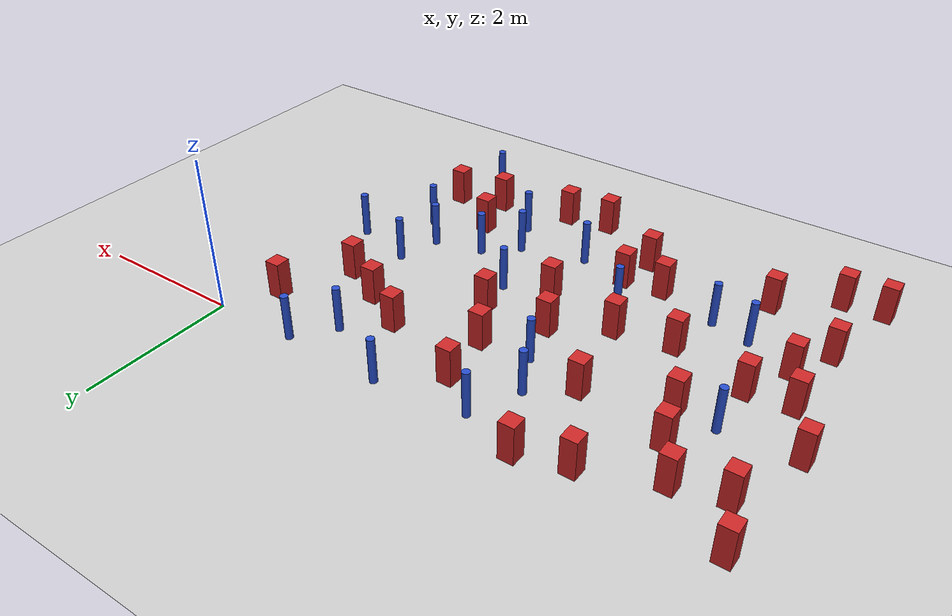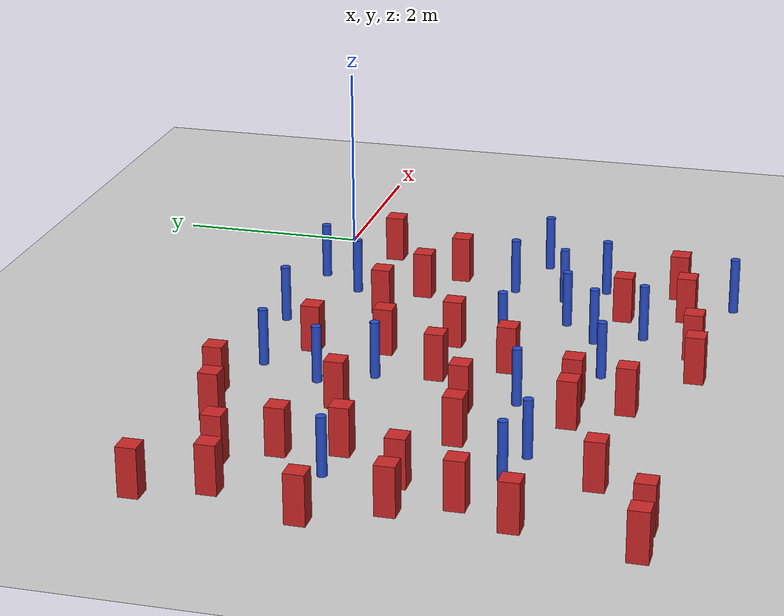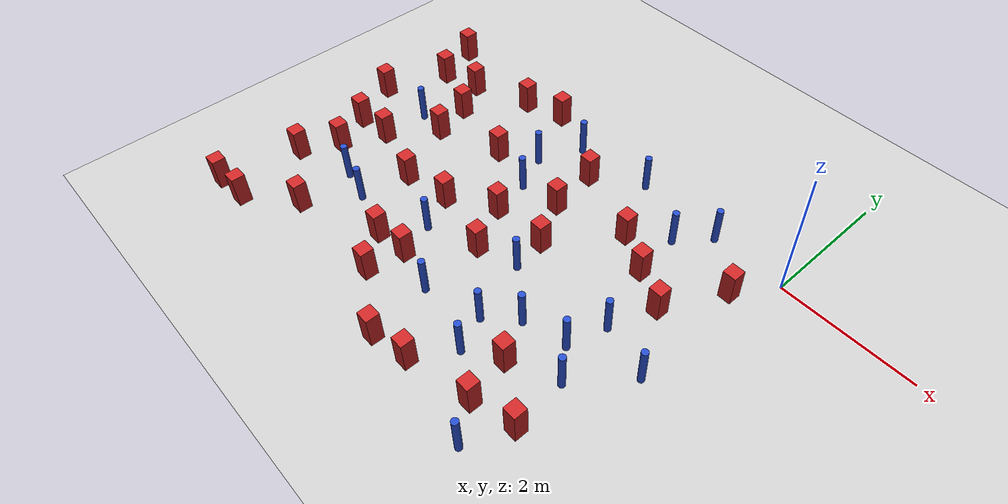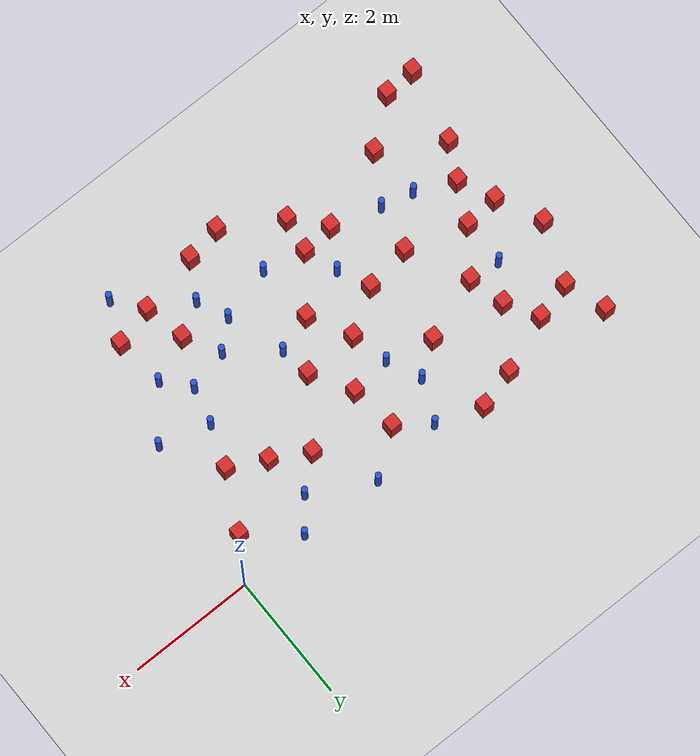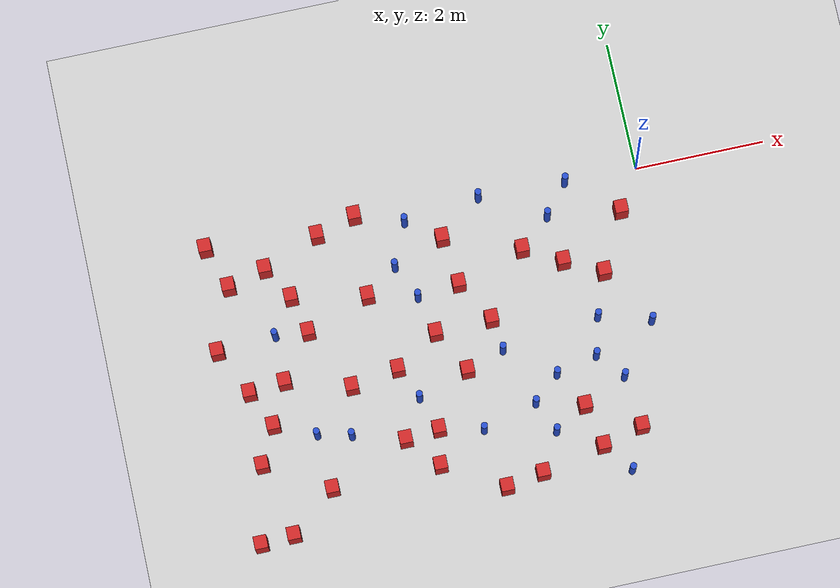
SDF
<sdf version="1.6">
 <world name="default">
  <model name="ground_plane">
   <static>1</static>
   <link name="link">
    <collision name="collision">
     <geometry><plane><normal>0 0 1</normal><size>100 100</size></plane></geometry>
     <surface><friction><ode><mu>100</mu><mu2>50</mu2></ode></friction></surface>
    </collision>
    <visual name="visual">
     <cast_shadows>0</cast_shadows>
     <geometry><plane><normal>0 0 1</normal><size>100 100</size></plane></geometry>
     <material>
      <ambient>1.0 1.0 1.0 1.0</ambient>
      <diffuse>0.8 0.8 0.8 1.0</diffuse>
      <specular>0.01 0.01 0.01 1.000000</specular>
     </material>
    </visual>
   </link>
  </model>
  <model name="square_post_obstacle0">
   <static>true</static>
   <pose>-6.48820125278 -2.20074903678 -6.11067671241e-07 -5.50515727128e-06 -8.79689657224e-07 2.37013304536e-05</pose>
   <link name="link">
    <pose>0 0 0.25 0 -0 0</pose>
    <inertial>
     <mass>100</mass>
     <inertia>
      <ixx>0.166667</ixx>
      <ixy>0</ixy>
      <ixz>0</ixz>
      <iyy>0.166667</iyy>
      <iyz>0</iyz>
      <izz>0.166667</izz>
     </inertia>
    </inertial>
    <collision name="collision"><geometry><box><size>.2 .2 .5</size></box></geometry></collision>
    <visual name="visual">
     <geometry><box><size>.2 .2 .5</size></box></geometry>
     <material>
      <script><name>Gazebo/Red</name><uri>file://media/materials/scripts/gazebo.material</uri></script>
     </material>
    </visual>
   </link>
  </model>
  <model name="square_post_obstacle13">
   <static>true</static>
   <pose>-0.3879240775 -0.623980842196 -6.11067671241e-07 -5.50515727128e-06 -8.79689657224e-07 2.37013304536e-05</pose>
   <link name="link">
    <pose>0 0 0.25 0 -0 0</pose>
    <inertial>
     <mass>100</mass>
     <inertia>
      <ixx>0.166667</ixx>
      <ixy>0</ixy>
      <ixz>0</ixz>
      <iyy>0.166667</iyy>
      <iyz>0</iyz>
      <izz>0.166667</izz>
     </inertia>
    </inertial>
    <collision name="collision"><geometry><box><size>.2 .2 .5</size></box></geometry></collision>
    <visual name="visual">
     <geometry><box><size>.2 .2 .5</size></box></geometry>
     <material>
      <script><name>Gazebo/Red</name><uri>file://media/materials/scripts/gazebo.material</uri></script>
     </material>
    </visual>
   </link>
  </model>
  <model name="square_post_obstacle21">
   <static>true</static>
   <pose>-3.89522748036 -3.89047158635 -6.11067671241e-07 -5.50515727128e-06 -8.79689657224e-07 2.37013304536e-05</pose>
   <link name="link">
    <pose>0 0 0.25 0 -0 0</pose>
    <inertial>
     <mass>100</mass>
     <inertia>
      <ixx>0.166667</ixx>
      <ixy>0</ixy>
      <ixz>0</ixz>
      <iyy>0.166667</iyy>
      <iyz>0</iyz>
      <izz>0.166667</izz>
     </inertia>
    </inertial>
    <collision name="collision"><geometry><box><size>.2 .2 .5</size></box></geometry></collision>
    <visual name="visual">
     <geometry><box><size>.2 .2 .5</size></box></geometry>
     <material>
      <script><name>Gazebo/Red</name><uri>file://media/materials/scripts/gazebo.material</uri></script>
     </material>
    </visual>
   </link>
  </model>
  <model name="pole_obstacle19">
   <static>true</static>
   <pose>-1.23644389583 -2.74520126491 -9.47619616065e-06 5.49618799737e-07 2.36310414062e-07 -1.55090534798e-07</pose>
   <link name="link">
    <pose>0 0 0.3 0 -0 0</pose>
    <inertial>
     <mass>1</mass>
     <inertia><ixx>0.145833</ixx><ixy>0</ixy><ixz>0</ixz><iyy>0.145833</iyy><iyz>0</iyz><izz>0.125</izz></inertia>
    </inertial>
    <collision name="collision">
     <geometry><cylinder><radius>0.05</radius><length>.6</length></cylinder></geometry>
    </collision>
    <visual name="visual">
     <geometry><cylinder><radius>0.05</radius><length>.6</length></cylinder></geometry>
     <material>
      <script><name>Gazebo/Blue</name><uri>file://media/materials/scripts/gazebo.material</uri></script>
     </material>
    </visual>
   </link>
  </model>
  <model name="square_post_obstacle29">
   <static>true</static>
   <pose>-6.77009937237 -4.49488068824 -6.11067671241e-07 -5.50515727128e-06 -8.79689657224e-07 2.37013304536e-05</pose>
   <link name="link">
    <pose>0 0 0.25 0 -0 0</pose>
    <inertial>
     <mass>100</mass>
     <inertia>
      <ixx>0.166667</ixx>
      <ixy>0</ixy>
      <ixz>0</ixz>
      <iyy>0.166667</iyy>
      <iyz>0</iyz>
      <izz>0.166667</izz>
     </inertia>
    </inertial>
    <collision name="collision"><geometry><box><size>.2 .2 .5</size></box></geometry></collision>
    <visual name="visual">
     <geometry><box><size>.2 .2 .5</size></box></geometry>
     <material>
      <script><name>Gazebo/Red</name><uri>file://media/materials/scripts/gazebo.material</uri></script>
     </material>
    </visual>
   </link>
  </model>
  <model name="square_post_obstacle30">
   <static>true</static>
   <pose>-2.98626958355 -4.42374359243 -6.11067671241e-07 -5.50515727128e-06 -8.79689657224e-07 2.37013304536e-05</pose>
   <link name="link">
    <pose>0 0 0.25 0 -0 0</pose>
    <inertial>
     <mass>100</mass>
     <inertia>
      <ixx>0.166667</ixx>
      <ixy>0</ixy>
      <ixz>0</ixz>
      <iyy>0.166667</iyy>
      <iyz>0</iyz>
      <izz>0.166667</izz>
     </inertia>
    </inertial>
    <collision name="collision"><geometry><box><size>.2 .2 .5</size></box></geometry></collision>
    <visual name="visual">
     <geometry><box><size>.2 .2 .5</size></box></geometry>
     <material>
      <script><name>Gazebo/Red</name><uri>file://media/materials/scripts/gazebo.material</uri></script>
     </material>
    </visual>
   </link>
  </model>
  <model name="square_post_obstacle31">
   <static>true</static>
   <pose>-6.47628070071 -0.537467946179 -6.11067671241e-07 -5.50515727128e-06 -8.79689657224e-07 2.37013304536e-05</pose>
   <link name="link">
    <pose>0 0 0.25 0 -0 0</pose>
    <inertial>
     <mass>100</mass>
     <inertia>
      <ixx>0.166667</ixx>
      <ixy>0</ixy>
      <ixz>0</ixz>
      <iyy>0.166667</iyy>
      <iyz>0</iyz>
      <izz>0.166667</izz>
     </inertia>
    </inertial>
    <collision name="collision"><geometry><box><size>.2 .2 .5</size></box></geometry></collision>
    <visual name="visual">
     <geometry><box><size>.2 .2 .5</size></box></geometry>
     <material>
      <script><name>Gazebo/Red</name><uri>file://media/materials/scripts/gazebo.material</uri></script>
     </material>
    </visual>
   </link>
  </model>
  <model name="pole_obstacle25">
   <static>true</static>
   <pose>-1.88073487549 -2.90103639177 -9.47619616065e-06 5.49618799737e-07 2.36310414062e-07 -1.55090534798e-07</pose>
   <link name="link">
    <pose>0 0 0.3 0 -0 0</pose>
    <inertial>
     <mass>1</mass>
     <inertia><ixx>0.145833</ixx><ixy>0</ixy><ixz>0</ixz><iyy>0.145833</iyy><iyz>0</iyz><izz>0.125</izz></inertia>
    </inertial>
    <collision name="collision">
     <geometry><cylinder><radius>0.05</radius><length>.6</length></cylinder></geometry>
    </collision>
    <visual name="visual">
     <geometry><cylinder><radius>0.05</radius><length>.6</length></cylinder></geometry>
     <material>
      <script><name>Gazebo/Blue</name><uri>file://media/materials/scripts/gazebo.material</uri></script>
     </material>
    </visual>
   </link>
  </model>
  <model name="pole_obstacle27">
   <static>true</static>
   <pose>-0.888759996802 -3.14930213834 -9.47619616065e-06 5.49618799737e-07 2.36310414066e-07 -1.55090534797e-07</pose>
   <link name="link">
    <pose>0 0 0.3 0 -0 0</pose>
    <inertial>
     <mass>1</mass>
     <inertia><ixx>0.145833</ixx><ixy>0</ixy><ixz>0</ixz><iyy>0.145833</iyy><iyz>0</iyz><izz>0.125</izz></inertia>
    </inertial>
    <collision name="collision">
     <geometry><cylinder><radius>0.05</radius><length>.6</length></cylinder></geometry>
    </collision>
    <visual name="visual">
     <geometry><cylinder><radius>0.05</radius><length>.6</length></cylinder></geometry>
     <material>
      <script><name>Gazebo/Blue</name><uri>file://media/materials/scripts/gazebo.material</uri></script>
     </material>
    </visual>
   </link>
  </model>
  <model name="pole_obstacle35">
   <static>true</static>
   <pose>-5.61649100675 -3.04436326011 -9.47619616065e-06 5.49618799738e-07 2.36310414051e-07 -1.55090534805e-07</pose>
   <link name="link">
    <pose>0 0 0.3 0 -0 0</pose>
    <inertial>
     <mass>1</mass>
     <inertia><ixx>0.145833</ixx><ixy>0</ixy><ixz>0</ixz><iyy>0.145833</iyy><iyz>0</iyz><izz>0.125</izz></inertia>
    </inertial>
    <collision name="collision">
     <geometry><cylinder><radius>0.05</radius><length>.6</length></cylinder></geometry>
    </collision>
    <visual name="visual">
     <geometry><cylinder><radius>0.05</radius><length>.6</length></cylinder></geometry>
     <material>
      <script><name>Gazebo/Blue</name><uri>file://media/materials/scripts/gazebo.material</uri></script>
     </material>
    </visual>
   </link>
  </model>
  <model name="square_post_obstacle36">
   <static>true</static>
   <pose>-3.19417511307 -2.55411420515 -6.11067671241e-07 -5.50515727128e-06 -8.79689657224e-07 2.37013304536e-05</pose>
   <link name="link">
    <pose>0 0 0.25 0 -0 0</pose>
    <inertial>
     <mass>100</mass>
     <inertia>
      <ixx>0.166667</ixx>
      <ixy>0</ixy>
      <ixz>0</ixz>
      <iyy>0.166667</iyy>
      <iyz>0</iyz>
      <izz>0.166667</izz>
     </inertia>
    </inertial>
    <collision name="collision"><geometry><box><size>.2 .2 .5</size></box></geometry></collision>
    <visual name="visual">
     <geometry><box><size>.2 .2 .5</size></box></geometry>
     <material>
      <script><name>Gazebo/Red</name><uri>file://media/materials/scripts/gazebo.material</uri></script>
     </material>
    </visual>
   </link>
  </model>
  <model name="square_post_obstacle37">
   <static>true</static>
   <pose>-1.41751599388 -1.21802448325 -6.11067671241e-07 -5.50515727128e-06 -8.79689657224e-07 2.37013304536e-05</pose>
   <link name="link">
    <pose>0 0 0.25 0 -0 0</pose>
    <inertial>
     <mass>100</mass>
     <inertia>
      <ixx>0.166667</ixx>
      <ixy>0</ixy>
      <ixz>0</ixz>
      <iyy>0.166667</iyy>
      <iyz>0</iyz>
      <izz>0.166667</izz>
     </inertia>
    </inertial>
    <collision name="collision"><geometry><box><size>.2 .2 .5</size></box></geometry></collision>
    <visual name="visual">
     <geometry><box><size>.2 .2 .5</size></box></geometry>
     <material>
      <script><name>Gazebo/Red</name><uri>file://media/materials/scripts/gazebo.material</uri></script>
     </material>
    </visual>
   </link>
  </model>
  <model name="pole_obstacle38">
   <static>true</static>
   <pose>-3.13582424816 -3.4988041668 -9.47619616065e-06 5.49618799737e-07 2.36310414051e-07 -1.55090534807e-07</pose>
   <link name="link">
    <pose>0 0 0.3 0 -0 0</pose>
    <inertial>
     <mass>1</mass>
     <inertia><ixx>0.145833</ixx><ixy>0</ixy><ixz>0</ixz><iyy>0.145833</iyy><iyz>0</iyz><izz>0.125</izz></inertia>
    </inertial>
    <collision name="collision">
     <geometry><cylinder><radius>0.05</radius><length>.6</length></cylinder></geometry>
    </collision>
    <visual name="visual">
     <geometry><cylinder><radius>0.05</radius><length>.6</length></cylinder></geometry>
     <material>
      <script><name>Gazebo/Blue</name><uri>file://media/materials/scripts/gazebo.material</uri></script>
     </material>
    </visual>
   </link>
  </model>
  <model name="pole_obstacle41">
   <static>true</static>
   <pose>-2.07291992488 -3.75096266474 -9.47619616065e-06 5.49618799737e-07 2.36310414051e-07 -1.55090534807e-07</pose>
   <link name="link">
    <pose>0 0 0.3 0 -0 0</pose>
    <inertial>
     <mass>1</mass>
     <inertia><ixx>0.145833</ixx><ixy>0</ixy><ixz>0</ixz><iyy>0.145833</iyy><iyz>0</iyz><izz>0.125</izz></inertia>
    </inertial>
    <collision name="collision">
     <geometry><cylinder><radius>0.05</radius><length>.6</length></cylinder></geometry>
    </collision>
    <visual name="visual">
     <geometry><cylinder><radius>0.05</radius><length>.6</length></cylinder></geometry>
     <material>
      <script><name>Gazebo/Blue</name><uri>file://media/materials/scripts/gazebo.material</uri></script>
     </material>
    </visual>
   </link>
  </model>
  <model name="square_post_obstacle50">
   <static>true</static>
   <pose>-2.67295161383 -1.8649905392 -6.11067671241e-07 -5.50515727128e-06 -8.79689657224e-07 2.37013304536e-05</pose>
   <link name="link">
    <pose>0 0 0.25 0 -0 0</pose>
    <inertial>
     <mass>100</mass>
     <inertia>
      <ixx>0.166667</ixx>
      <ixy>0</ixy>
      <ixz>0</ixz>
      <iyy>0.166667</iyy>
      <iyz>0</iyz>
      <izz>0.166667</izz>
     </inertia>
    </inertial>
    <collision name="collision"><geometry><box><size>.2 .2 .5</size></box></geometry></collision>
    <visual name="visual">
     <geometry><box><size>.2 .2 .5</size></box></geometry>
     <material>
      <script><name>Gazebo/Red</name><uri>file://media/materials/scripts/gazebo.material</uri></script>
     </material>
    </visual>
   </link>
  </model>
  <model name="square_post_obstacle56">
   <static>true</static>
   <pose>-4.95606259894 -2.43331023329 -6.11067671241e-07 -5.50515727128e-06 -8.79689657224e-07 2.37013304536e-05</pose>
   <link name="link">
    <pose>0 0 0.25 0 -0 0</pose>
    <inertial>
     <mass>100</mass>
     <inertia>
      <ixx>0.166667</ixx>
      <ixy>0</ixy>
      <ixz>0</ixz>
      <iyy>0.166667</iyy>
      <iyz>0</iyz>
      <izz>0.166667</izz>
     </inertia>
    </inertial>
    <collision name="collision"><geometry><box><size>.2 .2 .5</size></box></geometry></collision>
    <visual name="visual">
     <geometry><box><size>.2 .2 .5</size></box></geometry>
     <material>
      <script><name>Gazebo/Red</name><uri>file://media/materials/scripts/gazebo.material</uri></script>
     </material>
    </visual>
   </link>
  </model>
  <model name="pole_obstacle57">
   <static>true</static>
   <pose>-2.4710630331 0.0306721534229 -9.4761961606e-06 5.49618799729e-07 2.36310414005e-07 -1.55090534822e-07</pose>
   <link name="link">
    <pose>0 0 0.3 0 -0 0</pose>
    <inertial>
     <mass>1</mass>
     <inertia><ixx>0.145833</ixx><ixy>0</ixy><ixz>0</ixz><iyy>0.145833</iyy><iyz>0</iyz><izz>0.125</izz></inertia>
    </inertial>
    <collision name="collision">
     <geometry><cylinder><radius>0.05</radius><length>.6</length></cylinder></geometry>
    </collision>
    <visual name="visual">
     <geometry><cylinder><radius>0.05</radius><length>.6</length></cylinder></geometry>
     <material>
      <script><name>Gazebo/Blue</name><uri>file://media/materials/scripts/gazebo.material</uri></script>
     </material>
    </visual>
   </link>
  </model>
  <model name="square_post_obstacle65">
   <static>true</static>
   <pose>-3.04452387487 -1.22096344205 -6.11067671241e-07 -5.50515727128e-06 -8.79689657224e-07 2.37013304536e-05</pose>
   <link name="link">
    <pose>0 0 0.25 0 -0 0</pose>
    <inertial>
     <mass>100</mass>
     <inertia>
      <ixx>0.166667</ixx>
      <ixy>0</ixy>
      <ixz>0</ixz>
      <iyy>0.166667</iyy>
      <iyz>0</iyz>
      <izz>0.166667</izz>
     </inertia>
    </inertial>
    <collision name="collision"><geometry><box><size>.2 .2 .5</size></box></geometry></collision>
    <visual name="visual">
     <geometry><box><size>.2 .2 .5</size></box></geometry>
     <material>
      <script><name>Gazebo/Red</name><uri>file://media/materials/scripts/gazebo.material</uri></script>
     </material>
    </visual>
   </link>
  </model>
  <model name="pole_obstacle64">
   <static>true</static>
   <pose>-1.08383945225 -4.56778367891 -9.47619616065e-06 5.49618799737e-07 2.36310414061e-07 -1.550905348e-07</pose>
   <link name="link">
    <pose>0 0 0.3 0 -0 0</pose>
    <inertial>
     <mass>1</mass>
     <inertia><ixx>0.145833</ixx><ixy>0</ixy><ixz>0</ixz><iyy>0.145833</iyy><iyz>0</iyz><izz>0.125</izz></inertia>
    </inertial>
    <collision name="collision">
     <geometry><cylinder><radius>0.05</radius><length>.6</length></cylinder></geometry>
    </collision>
    <visual name="visual">
     <geometry><cylinder><radius>0.05</radius><length>.6</length></cylinder></geometry>
     <material>
      <script><name>Gazebo/Blue</name><uri>file://media/materials/scripts/gazebo.material</uri></script>
     </material>
    </visual>
   </link>
  </model>
  <model name="square_post_obstacle68">
   <static>true</static>
   <pose>-4.38597800625 0.142014449869 -6.11067671241e-07 -5.50515727128e-06 -8.79689657224e-07 2.37013304536e-05</pose>
   <link name="link">
    <pose>0 0 0.25 0 -0 0</pose>
    <inertial>
     <mass>100</mass>
     <inertia>
      <ixx>0.166667</ixx>
      <ixy>0</ixy>
      <ixz>0</ixz>
      <iyy>0.166667</iyy>
      <iyz>0</iyz>
      <izz>0.166667</izz>
     </inertia>
    </inertial>
    <collision name="collision"><geometry><box><size>.2 .2 .5</size></box></geometry></collision>
    <visual name="visual">
     <geometry><box><size>.2 .2 .5</size></box></geometry>
     <material>
      <script><name>Gazebo/Red</name><uri>file://media/materials/scripts/gazebo.material</uri></script>
     </material>
    </visual>
   </link>
  </model>
  <model name="square_post_obstacle72">
   <static>true</static>
   <pose>-5.00080519896 -0.0341089767746 -6.11067671241e-07 -5.50515727128e-06 -8.79689657224e-07 2.37013304536e-05</pose>
   <link name="link">
    <pose>0 0 0.25 0 -0 0</pose>
    <inertial>
     <mass>100</mass>
     <inertia>
      <ixx>0.166667</ixx>
      <ixy>0</ixy>
      <ixz>0</ixz>
      <iyy>0.166667</iyy>
      <iyz>0</iyz>
      <izz>0.166667</izz>
     </inertia>
    </inertial>
    <collision name="collision"><geometry><box><size>.2 .2 .5</size></box></geometry></collision>
    <visual name="visual">
     <geometry><box><size>.2 .2 .5</size></box></geometry>
     <material>
      <script><name>Gazebo/Red</name><uri>file://media/materials/scripts/gazebo.material</uri></script>
     </material>
    </visual>
   </link>
  </model>
  <model name="square_post_obstacle74">
   <static>true</static>
   <pose>-6.23469617299 -2.76724500619 -6.11067671241e-07 -5.50515727128e-06 -8.79689657224e-07 2.37013304536e-05</pose>
   <link name="link">
    <pose>0 0 0.25 0 -0 0</pose>
    <inertial>
     <mass>100</mass>
     <inertia>
      <ixx>0.166667</ixx>
      <ixy>0</ixy>
      <ixz>0</ixz>
      <iyy>0.166667</iyy>
      <iyz>0</iyz>
      <izz>0.166667</izz>
     </inertia>
    </inertial>
    <collision name="collision"><geometry><box><size>.2 .2 .5</size></box></geometry></collision>
    <visual name="visual">
     <geometry><box><size>.2 .2 .5</size></box></geometry>
     <material>
      <script><name>Gazebo/Red</name><uri>file://media/materials/scripts/gazebo.material</uri></script>
     </material>
    </visual>
   </link>
  </model>
  <model name="pole_obstacle84">
   <static>true</static>
   <pose>-2.28790025968 -3.26528536389 -9.47619616065e-06 5.49618799737e-07 2.36310414051e-07 -1.55090534807e-07</pose>
   <link name="link">
    <pose>0 0 0.3 0 -0 0</pose>
    <inertial>
     <mass>1</mass>
     <inertia><ixx>0.145833</ixx><ixy>0</ixy><ixz>0</ixz><iyy>0.145833</iyy><iyz>0</iyz><izz>0.125</izz></inertia>
    </inertial>
    <collision name="collision">
     <geometry><cylinder><radius>0.05</radius><length>.6</length></cylinder></geometry>
    </collision>
    <visual name="visual">
     <geometry><cylinder><radius>0.05</radius><length>.6</length></cylinder></geometry>
     <material>
      <script><name>Gazebo/Blue</name><uri>file://media/materials/scripts/gazebo.material</uri></script>
     </material>
    </visual>
   </link>
  </model>
  <model name="pole_obstacle88">
   <static>true</static>
   <pose>-3.98856489855 -2.81797859411 -9.47619616065e-06 5.49618799738e-07 2.36310414039e-07 -1.55090534813e-07</pose>
   <link name="link">
    <pose>0 0 0.3 0 -0 0</pose>
    <inertial>
     <mass>1</mass>
     <inertia><ixx>0.145833</ixx><ixy>0</ixy><ixz>0</ixz><iyy>0.145833</iyy><iyz>0</iyz><izz>0.125</izz></inertia>
    </inertial>
    <collision name="collision">
     <geometry><cylinder><radius>0.05</radius><length>.6</length></cylinder></geometry>
    </collision>
    <visual name="visual">
     <geometry><cylinder><radius>0.05</radius><length>.6</length></cylinder></geometry>
     <material>
      <script><name>Gazebo/Blue</name><uri>file://media/materials/scripts/gazebo.material</uri></script>
     </material>
    </visual>
   </link>
  </model>
  <model name="pole_obstacle91">
   <static>true</static>
   <pose>-3.93780106874 -0.762750510503 -9.47619616065e-06 5.49618799738e-07 2.36310414075e-07 -1.55090534793e-07</pose>
   <link name="link">
    <pose>0 0 0.3 0 -0 0</pose>
    <inertial>
     <mass>1</mass>
     <inertia><ixx>0.145833</ixx><ixy>0</ixy><ixz>0</ixz><iyy>0.145833</iyy><iyz>0</iyz><izz>0.125</izz></inertia>
    </inertial>
    <collision name="collision">
     <geometry><cylinder><radius>0.05</radius><length>.6</length></cylinder></geometry>
    </collision>
    <visual name="visual">
     <geometry><cylinder><radius>0.05</radius><length>.6</length></cylinder></geometry>
     <material>
      <script><name>Gazebo/Blue</name><uri>file://media/materials/scripts/gazebo.material</uri></script>
     </material>
    </visual>
   </link>
  </model>
  <model name="pole_obstacle94">
   <static>true</static>
   <pose>-1.50231332764 -0.481090543568 -9.47619616065e-06 5.49618799737e-07 2.36310414062e-07 -1.550905348e-07</pose>
   <link name="link">
    <pose>0 0 0.3 0 -0 0</pose>
    <inertial>
     <mass>1</mass>
     <inertia><ixx>0.145833</ixx><ixy>0</ixy><ixz>0</ixz><iyy>0.145833</iyy><iyz>0</iyz><izz>0.125</izz></inertia>
    </inertial>
    <collision name="collision">
     <geometry><cylinder><radius>0.05</radius><length>.6</length></cylinder></geometry>
    </collision>
    <visual name="visual">
     <geometry><cylinder><radius>0.05</radius><length>.6</length></cylinder></geometry>
     <material>
      <script><name>Gazebo/Blue</name><uri>file://media/materials/scripts/gazebo.material</uri></script>
     </material>
    </visual>
   </link>
  </model>
  <model name="square_post_obstacle87">
   <static>true</static>
   <pose>-4.43873987502 -1.11701525282 -6.11067671241e-07 -5.50515727128e-06 -8.79689657224e-07 2.37013304536e-05</pose>
   <link name="link">
    <pose>0 0 0.25 0 -0 0</pose>
    <inertial>
     <mass>100</mass>
     <inertia>
      <ixx>0.166667</ixx>
      <ixy>0</ixy>
      <ixz>0</ixz>
      <iyy>0.166667</iyy>
      <iyz>0</iyz>
      <izz>0.166667</izz>
     </inertia>
    </inertial>
    <collision name="collision"><geometry><box><size>.2 .2 .5</size></box></geometry></collision>
    <visual name="visual">
     <geometry><box><size>.2 .2 .5</size></box></geometry>
     <material>
      <script><name>Gazebo/Red</name><uri>file://media/materials/scripts/gazebo.material</uri></script>
     </material>
    </visual>
   </link>
  </model>
  <model name="square_post_obstacle89">
   <static>true</static>
   <pose>-4.32651753134 -3.39674720753 -6.11067671241e-07 -5.50515727128e-06 -8.79689657224e-07 2.37013304536e-05</pose>
   <link name="link">
    <pose>0 0 0.25 0 -0 0</pose>
    <inertial>
     <mass>100</mass>
     <inertia>
      <ixx>0.166667</ixx>
      <ixy>0</ixy>
      <ixz>0</ixz>
      <iyy>0.166667</iyy>
      <iyz>0</iyz>
      <izz>0.166667</izz>
     </inertia>
    </inertial>
    <collision name="collision"><geometry><box><size>.2 .2 .5</size></box></geometry></collision>
    <visual name="visual">
     <geometry><box><size>.2 .2 .5</size></box></geometry>
     <material>
      <script><name>Gazebo/Red</name><uri>file://media/materials/scripts/gazebo.material</uri></script>
     </material>
    </visual>
   </link>
  </model>
  <model name="square_post_obstacle90">
   <static>true</static>
   <pose>-1.9890168716 -0.902845365833 -6.11067671241e-07 -5.50515727128e-06 -8.79689657224e-07 2.37013304536e-05</pose>
   <link name="link">
    <pose>0 0 0.25 0 -0 0</pose>
    <inertial>
     <mass>100</mass>
     <inertia>
      <ixx>0.166667</ixx>
      <ixy>0</ixy>
      <ixz>0</ixz>
      <iyy>0.166667</iyy>
      <iyz>0</iyz>
      <izz>0.166667</izz>
     </inertia>
    </inertial>
    <collision name="collision"><geometry><box><size>.2 .2 .5</size></box></geometry></collision>
    <visual name="visual">
     <geometry><box><size>.2 .2 .5</size></box></geometry>
     <material>
      <script><name>Gazebo/Red</name><uri>file://media/materials/scripts/gazebo.material</uri></script>
     </material>
    </visual>
   </link>
  </model>
  <model name="square_post_obstacle96">
   <static>true</static>
   <pose>-6.83653183019 -1.48233624763 -6.11067671241e-07 -5.50515727128e-06 -8.79689657224e-07 2.37013304536e-05</pose>
   <link name="link">
    <pose>0 0 0.25 0 -0 0</pose>
    <inertial>
     <mass>100</mass>
     <inertia>
      <ixx>0.166667</ixx>
      <ixy>0</ixy>
      <ixz>0</ixz>
      <iyy>0.166667</iyy>
      <iyz>0</iyz>
      <izz>0.166667</izz>
     </inertia>
    </inertial>
    <collision name="collision"><geometry><box><size>.2 .2 .5</size></box></geometry></collision>
    <visual name="visual">
     <geometry><box><size>.2 .2 .5</size></box></geometry>
     <material>
      <script><name>Gazebo/Red</name><uri>file://media/materials/scripts/gazebo.material</uri></script>
     </material>
    </visual>
   </link>
  </model>
  <model name="square_post_obstacle98">
   <static>true</static>
   <pose>-6.51953422701 -3.32281983982 -6.11067671241e-07 -5.50515727128e-06 -8.79689657224e-07 2.37013304536e-05</pose>
   <link name="link">
    <pose>0 0 0.25 0 -0 0</pose>
    <inertial>
     <mass>100</mass>
     <inertia>
      <ixx>0.166667</ixx>
      <ixy>0</ixy>
      <ixz>0</ixz>
      <iyy>0.166667</iyy>
      <iyz>0</iyz>
      <izz>0.166667</izz>
     </inertia>
    </inertial>
    <collision name="collision"><geometry><box><size>.2 .2 .5</size></box></geometry></collision>
    <visual name="visual">
     <geometry><box><size>.2 .2 .5</size></box></geometry>
     <material>
      <script><name>Gazebo/Red</name><uri>file://media/materials/scripts/gazebo.material</uri></script>
     </material>
    </visual>
   </link>
  </model>
  <model name="pole_obstacle112">
   <static>true</static>
   <pose>-0.292958102647 -2.39415916698 -9.47619616065e-06 5.49618799738e-07 2.36310414071e-07 -1.55090534795e-07</pose>
   <link name="link">
    <pose>0 0 0.3 0 -0 0</pose>
    <inertial>
     <mass>1</mass>
     <inertia><ixx>0.145833</ixx><ixy>0</ixy><ixz>0</ixz><iyy>0.145833</iyy><iyz>0</iyz><izz>0.125</izz></inertia>
    </inertial>
    <collision name="collision">
     <geometry><cylinder><radius>0.05</radius><length>.6</length></cylinder></geometry>
    </collision>
    <visual name="visual">
     <geometry><cylinder><radius>0.05</radius><length>.6</length></cylinder></geometry>
     <material>
      <script><name>Gazebo/Blue</name><uri>file://media/materials/scripts/gazebo.material</uri></script>
     </material>
    </visual>
   </link>
  </model>
  <model name="square_post_obstacle103">
   <static>true</static>
   <pose>-2.40951182703 -4.32344139351 -6.11067671241e-07 -5.50515727128e-06 -8.79689657224e-07 2.37013304536e-05</pose>
   <link name="link">
    <pose>0 0 0.25 0 -0 0</pose>
    <inertial>
     <mass>100</mass>
     <inertia>
      <ixx>0.166667</ixx>
      <ixy>0</ixy>
      <ixz>0</ixz>
      <iyy>0.166667</iyy>
      <iyz>0</iyz>
      <izz>0.166667</izz>
     </inertia>
    </inertial>
    <collision name="collision"><geometry><box><size>.2 .2 .5</size></box></geometry></collision>
    <visual name="visual">
     <geometry><box><size>.2 .2 .5</size></box></geometry>
     <material>
      <script><name>Gazebo/Red</name><uri>file://media/materials/scripts/gazebo.material</uri></script>
     </material>
    </visual>
   </link>
  </model>
  <model name="square_post_obstacle108">
   <static>true</static>
   <pose>-6.26179330007 -4.46168018331 -6.11067671241e-07 -5.50515727128e-06 -8.79689657224e-07 2.37013304536e-05</pose>
   <link name="link">
    <pose>0 0 0.25 0 -0 0</pose>
    <inertial>
     <mass>100</mass>
     <inertia>
      <ixx>0.166667</ixx>
      <ixy>0</ixy>
      <ixz>0</ixz>
      <iyy>0.166667</iyy>
      <iyz>0</iyz>
      <izz>0.166667</izz>
     </inertia>
    </inertial>
    <collision name="collision"><geometry><box><size>.2 .2 .5</size></box></geometry></collision>
    <visual name="visual">
     <geometry><box><size>.2 .2 .5</size></box></geometry>
     <material>
      <script><name>Gazebo/Red</name><uri>file://media/materials/scripts/gazebo.material</uri></script>
     </material>
    </visual>
   </link>
  </model>
  <model name="square_post_obstacle109">
   <static>true</static>
   <pose>-0.844565556834 -1.50904205589 -6.11067671241e-07 -5.50515727128e-06 -8.79689657224e-07 2.37013304536e-05</pose>
   <link name="link">
    <pose>0 0 0.25 0 -0 0</pose>
    <inertial>
     <mass>100</mass>
     <inertia>
      <ixx>0.166667</ixx>
      <ixy>0</ixy>
      <ixz>0</ixz>
      <iyy>0.166667</iyy>
      <iyz>0</iyz>
      <izz>0.166667</izz>
     </inertia>
    </inertial>
    <collision name="collision"><geometry><box><size>.2 .2 .5</size></box></geometry></collision>
    <visual name="visual">
     <geometry><box><size>.2 .2 .5</size></box></geometry>
     <material>
      <script><name>Gazebo/Red</name><uri>file://media/materials/scripts/gazebo.material</uri></script>
     </material>
    </visual>
   </link>
  </model>
  <model name="pole_obstacle130">
   <static>true</static>
   <pose>-1.12676761049 -0.0129343785094 -9.47619616065e-06 5.49618799737e-07 2.36310414061e-07 -1.55090534798e-07</pose>
   <link name="link">
    <pose>0 0 0.3 0 -0 0</pose>
    <inertial>
     <mass>1</mass>
     <inertia><ixx>0.145833</ixx><ixy>0</ixy><ixz>0</ixz><iyy>0.145833</iyy><iyz>0</iyz><izz>0.125</izz></inertia>
    </inertial>
    <collision name="collision">
     <geometry><cylinder><radius>0.05</radius><length>.6</length></cylinder></geometry>
    </collision>
    <visual name="visual">
     <geometry><cylinder><radius>0.05</radius><length>.6</length></cylinder></geometry>
     <material>
      <script><name>Gazebo/Blue</name><uri>file://media/materials/scripts/gazebo.material</uri></script>
     </material>
    </visual>
   </link>
  </model>
  <model name="square_post_obstacle116">
   <static>true</static>
   <pose>-5.88261466952 -0.380844978129 -6.11067671241e-07 -5.50515727128e-06 -8.79689657224e-07 2.37013304536e-05</pose>
   <link name="link">
    <pose>0 0 0.25 0 -0 0</pose>
    <inertial>
     <mass>100</mass>
     <inertia>
      <ixx>0.166667</ixx>
      <ixy>0</ixy>
      <ixz>0</ixz>
      <iyy>0.166667</iyy>
      <iyz>0</iyz>
      <izz>0.166667</izz>
     </inertia>
    </inertial>
    <collision name="collision"><geometry><box><size>.2 .2 .5</size></box></geometry></collision>
    <visual name="visual">
     <geometry><box><size>.2 .2 .5</size></box></geometry>
     <material>
      <script><name>Gazebo/Red</name><uri>file://media/materials/scripts/gazebo.material</uri></script>
     </material>
    </visual>
   </link>
  </model>
  <model name="pole_obstacle136">
   <static>true</static>
   <pose>-3.65192369453 -0.109692642439 -9.47619616065e-06 5.49618799737e-07 2.36310414066e-07 -1.55090534798e-07</pose>
   <link name="link">
    <pose>0 0 0.3 0 -0 0</pose>
    <inertial>
     <mass>1</mass>
     <inertia><ixx>0.145833</ixx><ixy>0</ixy><ixz>0</ixz><iyy>0.145833</iyy><iyz>0</iyz><izz>0.125</izz></inertia>
    </inertial>
    <collision name="collision">
     <geometry><cylinder><radius>0.05</radius><length>.6</length></cylinder></geometry>
    </collision>
    <visual name="visual">
     <geometry><cylinder><radius>0.05</radius><length>.6</length></cylinder></geometry>
     <material>
      <script><name>Gazebo/Blue</name><uri>file://media/materials/scripts/gazebo.material</uri></script>
     </material>
    </visual>
   </link>
  </model>
  <model name="pole_obstacle138">
   <static>true</static>
   <pose>-5.1072143845 -3.16765516859 -9.47619616065e-06 5.49618799738e-07 2.36310414051e-07 -1.55090534805e-07</pose>
   <link name="link">
    <pose>0 0 0.3 0 -0 0</pose>
    <inertial>
     <mass>1</mass>
     <inertia><ixx>0.145833</ixx><ixy>0</ixy><ixz>0</ixz><iyy>0.145833</iyy><iyz>0</iyz><izz>0.125</izz></inertia>
    </inertial>
    <collision name="collision">
     <geometry><cylinder><radius>0.05</radius><length>.6</length></cylinder></geometry>
    </collision>
    <visual name="visual">
     <geometry><cylinder><radius>0.05</radius><length>.6</length></cylinder></geometry>
     <material>
      <script><name>Gazebo/Blue</name><uri>file://media/materials/scripts/gazebo.material</uri></script>
     </material>
    </visual>
   </link>
  </model>
  <model name="square_post_obstacle120">
   <static>true</static>
   <pose>-5.93403807919 -2.14603742365 -6.11067671241e-07 -5.50515727128e-06 -8.79689657224e-07 2.37013304536e-05</pose>
   <link name="link">
    <pose>0 0 0.25 0 -0 0</pose>
    <inertial>
     <mass>100</mass>
     <inertia>
      <ixx>0.166667</ixx>
      <ixy>0</ixy>
      <ixz>0</ixz>
      <iyy>0.166667</iyy>
      <iyz>0</iyz>
      <izz>0.166667</izz>
     </inertia>
    </inertial>
    <collision name="collision"><geometry><box><size>.2 .2 .5</size></box></geometry></collision>
    <visual name="visual">
     <geometry><box><size>.2 .2 .5</size></box></geometry>
     <material>
      <script><name>Gazebo/Red</name><uri>file://media/materials/scripts/gazebo.material</uri></script>
     </material>
    </visual>
   </link>
  </model>
  <model name="square_post_obstacle130">
   <static>true</static>
   <pose>-4.21965351702 -2.31151368041 -6.11067671241e-07 -5.50515727128e-06 -8.79689657224e-07 2.37013304536e-05</pose>
   <link name="link">
    <pose>0 0 0.25 0 -0 0</pose>
    <inertial>
     <mass>100</mass>
     <inertia>
      <ixx>0.166667</ixx>
      <ixy>0</ixy>
      <ixz>0</ixz>
      <iyy>0.166667</iyy>
      <iyz>0</iyz>
      <izz>0.166667</izz>
     </inertia>
    </inertial>
    <collision name="collision"><geometry><box><size>.2 .2 .5</size></box></geometry></collision>
    <visual name="visual">
     <geometry><box><size>.2 .2 .5</size></box></geometry>
     <material>
      <script><name>Gazebo/Red</name><uri>file://media/materials/scripts/gazebo.material</uri></script>
     </material>
    </visual>
   </link>
  </model>
  <model name="square_post_obstacle132">
   <static>true</static>
   <pose>-3.14338987007 -0.475171186427 -6.11067671241e-07 -5.50515727128e-06 -8.79689657224e-07 2.37013304536e-05</pose>
   <link name="link">
    <pose>0 0 0.25 0 -0 0</pose>
    <inertial>
     <mass>100</mass>
     <inertia>
      <ixx>0.166667</ixx>
      <ixy>0</ixy>
      <ixz>0</ixz>
      <iyy>0.166667</iyy>
      <iyz>0</iyz>
      <izz>0.166667</izz>
     </inertia>
    </inertial>
    <collision name="collision"><geometry><box><size>.2 .2 .5</size></box></geometry></collision>
    <visual name="visual">
     <geometry><box><size>.2 .2 .5</size></box></geometry>
     <material>
      <script><name>Gazebo/Red</name><uri>file://media/materials/scripts/gazebo.material</uri></script>
     </material>
    </visual>
   </link>
  </model>
  <model name="pole_obstacle147">
   <static>true</static>
   <pose>-2.60201528976 -2.36241978643 -9.47619616065e-06 5.49618799737e-07 2.36310414051e-07 -1.55090534807e-07</pose>
   <link name="link">
    <pose>0 0 0.3 0 -0 0</pose>
    <inertial>
     <mass>1</mass>
     <inertia><ixx>0.145833</ixx><ixy>0</ixy><ixz>0</ixz><iyy>0.145833</iyy><iyz>0</iyz><izz>0.125</izz></inertia>
    </inertial>
    <collision name="collision">
     <geometry><cylinder><radius>0.05</radius><length>.6</length></cylinder></geometry>
    </collision>
    <visual name="visual">
     <geometry><cylinder><radius>0.05</radius><length>.6</length></cylinder></geometry>
     <material>
      <script><name>Gazebo/Blue</name><uri>file://media/materials/scripts/gazebo.material</uri></script>
     </material>
    </visual>
   </link>
  </model>
  <model name="square_post_obstacle138">
   <static>true</static>
   <pose>-5.58095019297 -0.891708904031 -6.11067671241e-07 -5.50515727128e-06 -8.79689657224e-07 2.37013304536e-05</pose>
   <link name="link">
    <pose>0 0 0.25 0 -0 0</pose>
    <inertial>
     <mass>100</mass>
     <inertia>
      <ixx>0.166667</ixx>
      <ixy>0</ixy>
      <ixz>0</ixz>
      <iyy>0.166667</iyy>
      <iyz>0</iyz>
      <izz>0.166667</izz>
     </inertia>
    </inertial>
    <collision name="collision"><geometry><box><size>.2 .2 .5</size></box></geometry></collision>
    <visual name="visual">
     <geometry><box><size>.2 .2 .5</size></box></geometry>
     <material>
      <script><name>Gazebo/Red</name><uri>file://media/materials/scripts/gazebo.material</uri></script>
     </material>
    </visual>
   </link>
  </model>
  <model name="square_post_obstacle150">
   <static>true</static>
   <pose>-5.55786061047 -3.89389987365 -6.11067671241e-07 -5.50515727128e-06 -8.79689657224e-07 2.37013304536e-05</pose>
   <link name="link">
    <pose>0 0 0.25 0 -0 0</pose>
    <inertial>
     <mass>100</mass>
     <inertia>
      <ixx>0.166667</ixx>
      <ixy>0</ixy>
      <ixz>0</ixz>
      <iyy>0.166667</iyy>
      <iyz>0</iyz>
      <izz>0.166667</izz>
     </inertia>
    </inertial>
    <collision name="collision"><geometry><box><size>.2 .2 .5</size></box></geometry></collision>
    <visual name="visual">
     <geometry><box><size>.2 .2 .5</size></box></geometry>
     <material>
      <script><name>Gazebo/Red</name><uri>file://media/materials/scripts/gazebo.material</uri></script>
     </material>
    </visual>
   </link>
  </model>
  <model name="pole_obstacle158">
   <static>true</static>
   <pose>-5.93395742077 -1.42767980239 -9.47619616065e-06 5.49618799738e-07 2.36310414071e-07 -1.55090534796e-07</pose>
   <link name="link">
    <pose>0 0 0.3 0 -0 0</pose>
    <inertial>
     <mass>1</mass>
     <inertia><ixx>0.145833</ixx><ixy>0</ixy><ixz>0</ixz><iyy>0.145833</iyy><iyz>0</iyz><izz>0.125</izz></inertia>
    </inertial>
    <collision name="collision">
     <geometry><cylinder><radius>0.05</radius><length>.6</length></cylinder></geometry>
    </collision>
    <visual name="visual">
     <geometry><cylinder><radius>0.05</radius><length>.6</length></cylinder></geometry>
     <material>
      <script><name>Gazebo/Blue</name><uri>file://media/materials/scripts/gazebo.material</uri></script>
     </material>
    </visual>
   </link>
  </model>
  <model name="pole_obstacle168">
   <static>true</static>
   <pose>-1.0855458445 -2.16811030326 -9.47619616065e-06 5.49618799737e-07 2.36310414062e-07 -1.55090534798e-07</pose>
   <link name="link">
    <pose>0 0 0.3 0 -0 0</pose>
    <inertial>
     <mass>1</mass>
     <inertia><ixx>0.145833</ixx><ixy>0</ixy><ixz>0</ixz><iyy>0.145833</iyy><iyz>0</iyz><izz>0.125</izz></inertia>
    </inertial>
    <collision name="collision">
     <geometry><cylinder><radius>0.05</radius><length>.6</length></cylinder></geometry>
    </collision>
    <visual name="visual">
     <geometry><cylinder><radius>0.05</radius><length>.6</length></cylinder></geometry>
     <material>
      <script><name>Gazebo/Blue</name><uri>file://media/materials/scripts/gazebo.material</uri></script>
     </material>
    </visual>
   </link>
  </model>
  <model name="square_post_obstacle164">
   <static>true</static>
   <pose>-1.43207824687 -4.11161131151 -6.11067671241e-07 -5.50515727128e-06 -8.79689657224e-07 2.37013304536e-05</pose>
   <link name="link">
    <pose>0 0 0.25 0 -0 0</pose>
    <inertial>
     <mass>100</mass>
     <inertia>
      <ixx>0.166667</ixx>
      <ixy>0</ixy>
      <ixz>0</ixz>
      <iyy>0.166667</iyy>
      <iyz>0</iyz>
      <izz>0.166667</izz>
     </inertia>
    </inertial>
    <collision name="collision"><geometry><box><size>.2 .2 .5</size></box></geometry></collision>
    <visual name="visual">
     <geometry><box><size>.2 .2 .5</size></box></geometry>
     <material>
      <script><name>Gazebo/Red</name><uri>file://media/materials/scripts/gazebo.material</uri></script>
     </material>
    </visual>
   </link>
  </model>
  <model name="pole_obstacle183">
   <static>true</static>
   <pose>-3.69168057824 -1.29663712965 -9.47619616065e-06 5.49618799737e-07 2.36310414072e-07 -1.55090534793e-07</pose>
   <link name="link">
    <pose>0 0 0.3 0 -0 0</pose>
    <inertial>
     <mass>1</mass>
     <inertia><ixx>0.145833</ixx><ixy>0</ixy><ixz>0</ixz><iyy>0.145833</iyy><iyz>0</iyz><izz>0.125</izz></inertia>
    </inertial>
    <collision name="collision">
     <geometry><cylinder><radius>0.05</radius><length>.6</length></cylinder></geometry>
    </collision>
    <visual name="visual">
     <geometry><cylinder><radius>0.05</radius><length>.6</length></cylinder></geometry>
     <material>
      <script><name>Gazebo/Blue</name><uri>file://media/materials/scripts/gazebo.material</uri></script>
     </material>
    </visual>
   </link>
  </model>
  <model name="square_post_obstacle173">
   <static>true</static>
   <pose>-3.54566572693 -1.88934465096 -6.11067671241e-07 -5.50515727128e-06 -8.79689657224e-07 2.37013304536e-05</pose>
   <link name="link">
    <pose>0 0 0.25 0 -0 0</pose>
    <inertial>
     <mass>100</mass>
     <inertia>
      <ixx>0.166667</ixx>
      <ixy>0</ixy>
      <ixz>0</ixz>
      <iyy>0.166667</iyy>
      <iyz>0</iyz>
      <izz>0.166667</izz>
     </inertia>
    </inertial>
    <collision name="collision"><geometry><box><size>.2 .2 .5</size></box></geometry></collision>
    <visual name="visual">
     <geometry><box><size>.2 .2 .5</size></box></geometry>
     <material>
      <script><name>Gazebo/Red</name><uri>file://media/materials/scripts/gazebo.material</uri></script>
     </material>
    </visual>
   </link>
  </model>
  <model name="square_post_obstacle183">
   <static>true</static>
   <pose>-1.57244580705 -3.45618919127 -6.11067671241e-07 -5.50515727128e-06 -8.79689657224e-07 2.37013304536e-05</pose>
   <link name="link">
    <pose>0 0 0.25 0 -0 0</pose>
    <inertial>
     <mass>100</mass>
     <inertia>
      <ixx>0.166667</ixx>
      <ixy>0</ixy>
      <ixz>0</ixz>
      <iyy>0.166667</iyy>
      <iyz>0</iyz>
      <izz>0.166667</izz>
     </inertia>
    </inertial>
    <collision name="collision"><geometry><box><size>.2 .2 .5</size></box></geometry></collision>
    <visual name="visual">
     <geometry><box><size>.2 .2 .5</size></box></geometry>
     <material>
      <script><name>Gazebo/Red</name><uri>file://media/materials/scripts/gazebo.material</uri></script>
     </material>
    </visual>
   </link>
  </model>
  <model name="square_post_obstacle188">
   <static>true</static>
   <pose>-6.70399772381 0.122506166336 -6.11067671241e-07 -5.50515727128e-06 -8.79689657224e-07 2.37013304536e-05</pose>
   <link name="link">
    <pose>0 0 0.25 0 -0 0</pose>
    <inertial>
     <mass>100</mass>
     <inertia>
      <ixx>0.166667</ixx>
      <ixy>0</ixy>
      <ixz>0</ixz>
      <iyy>0.166667</iyy>
      <iyz>0</iyz>
      <izz>0.166667</izz>
     </inertia>
    </inertial>
    <collision name="collision"><geometry><box><size>.2 .2 .5</size></box></geometry></collision>
    <visual name="visual">
     <geometry><box><size>.2 .2 .5</size></box></geometry>
     <material>
      <script><name>Gazebo/Red</name><uri>file://media/materials/scripts/gazebo.material</uri></script>
     </material>
    </visual>
   </link>
  </model>
  <model name="square_post_obstacle219">
   <static>true</static>
   <pose>-3.8031100498 -3.34450002312 -6.11067671241e-07 -5.50515727128e-06 -8.79689657224e-07 2.37013304536e-05</pose>
   <link name="link">
    <pose>0 0 0.25 0 -0 0</pose>
    <inertial>
     <mass>100</mass>
     <inertia>
      <ixx>0.166667</ixx>
      <ixy>0</ixy>
      <ixz>0</ixz>
      <iyy>0.166667</iyy>
      <iyz>0</iyz>
      <izz>0.166667</izz>
     </inertia>
    </inertial>
    <collision name="collision"><geometry><box><size>.2 .2 .5</size></box></geometry></collision>
    <visual name="visual">
     <geometry><box><size>.2 .2 .5</size></box></geometry>
     <material>
      <script><name>Gazebo/Red</name><uri>file://media/materials/scripts/gazebo.material</uri></script>
     </material>
    </visual>
   </link>
  </model>
  <model name="square_post_obstacle240">
   <static>true</static>
   <pose>-5.4321200498 -1.46951002312 -6.11067671241e-07 -5.50515727128e-06 -8.79689657224e-07 2.37013304536e-05</pose>
   <link name="link">
    <pose>0 0 0.25 0 -0 0</pose>
    <inertial>
     <mass>100</mass>
     <inertia>
      <ixx>0.166667</ixx>
      <ixy>0</ixy>
      <ixz>0</ixz>
      <iyy>0.166667</iyy>
      <iyz>0</iyz>
      <izz>0.166667</izz>
     </inertia>
    </inertial>
    <collision name="collision"><geometry><box><size>.2 .2 .5</size></box></geometry></collision>
    <visual name="visual">
     <geometry><box><size>.2 .2 .5</size></box></geometry>
     <material>
      <script><name>Gazebo/Red</name><uri>file://media/materials/scripts/gazebo.material</uri></script>
     </material>
    </visual>
   </link>
  </model>
  <model name="square_post_obstacle244">
   <static>true</static>
   <pose>-0.804181049797 -3.94592002312 -6.11067671241e-07 -5.50515727128e-06 -8.79689657224e-07 2.37013304536e-05</pose>
   <link name="link">
    <pose>0 0 0.25 0 -0 0</pose>
    <inertial>
     <mass>100</mass>
     <inertia>
      <ixx>0.166667</ixx>
      <ixy>0</ixy>
      <ixz>0</ixz>
      <iyy>0.166667</iyy>
      <iyz>0</iyz>
      <izz>0.166667</izz>
     </inertia>
    </inertial>
    <collision name="collision"><geometry><box><size>.2 .2 .5</size></box></geometry></collision>
    <visual name="visual">
     <geometry><box><size>.2 .2 .5</size></box></geometry>
     <material>
      <script><name>Gazebo/Red</name><uri>file://media/materials/scripts/gazebo.material</uri></script>
     </material>
    </visual>
   </link>
  </model>
 </world>
</sdf>
